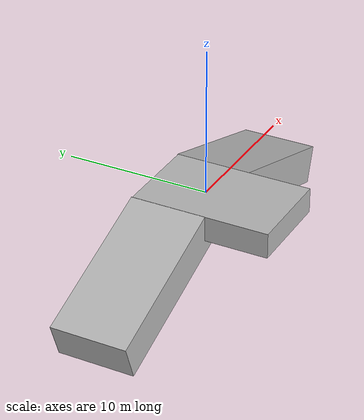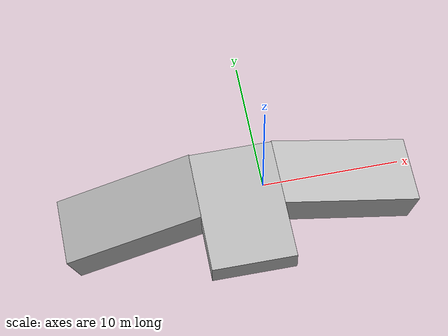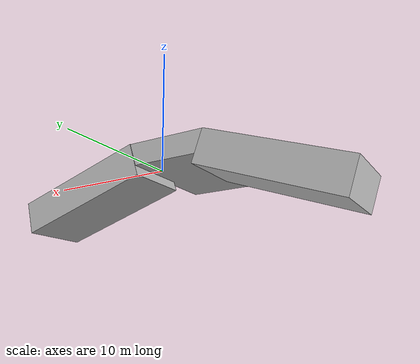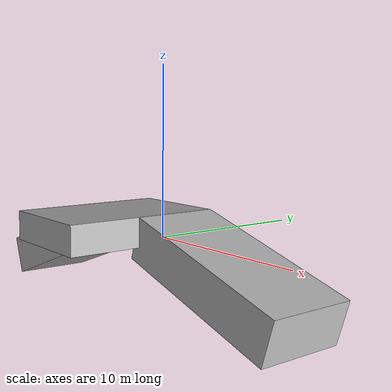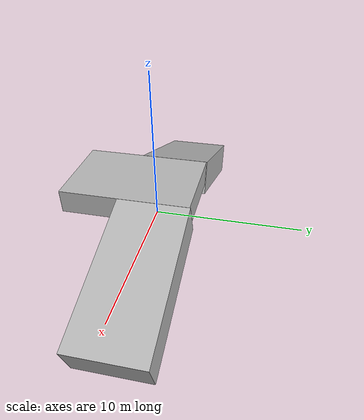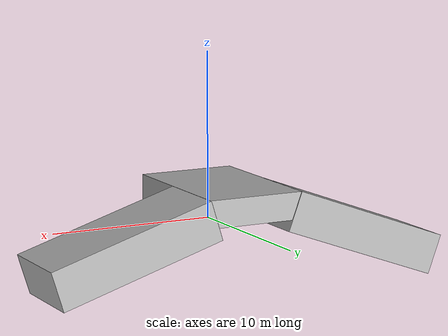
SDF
<?xml version='1.0'?>
<sdf version='1.7'>
  <model name='slope_ros2_papaer1'>
    <link name='slope_down'>
      <pose>5.80469 0.081427 -1.20923 0 0.299885 0</pose>
      <self_collide>0</self_collide>
      <kinematic>0</kinematic>
      <gravity>1</gravity>
      <enable_wind>0</enable_wind>
      <inertial>
        <inertia>
          <ixx>0</ixx>
          <ixy>0</ixy>
          <ixz>0</ixz>
          <iyy>0</iyy>
          <iyz>0</iyz>
          <izz>0</izz>
        </inertia>
        <mass>0</mass>
        <pose>0 0 0 0 -0 0</pose>
      </inertial>
      <visual name='visual'>
        <geometry>
          <box>
            <size>10.6012 5.12132 2.52711</size>
          </box>
        </geometry>
        <material>
          <shader type='pixel'/>
        </material>
        <pose>0 0 0 0 -0 0</pose>
        <transparency>0</transparency>
        <cast_shadows>1</cast_shadows>
      </visual>
      <collision name='collision'>
        <laser_retro>0</laser_retro>
        <max_contacts>10</max_contacts>
        <pose>0 0 0 0 -0 0</pose>
        <geometry>
          <box>
            <size>10.6012 5.12132 2.52711</size>
          </box>
        </geometry>
        <surface>
          <friction>
            <ode>
              <mu>1</mu>
              <mu2>1</mu2>
              <fdir1>0 0 0</fdir1>
              <slip1>0</slip1>
              <slip2>0</slip2>
            </ode>
            <torsional>
              <coefficient>1</coefficient>
              <patch_radius>0</patch_radius>
              <surface_radius>0</surface_radius>
              <use_patch_radius>1</use_patch_radius>
              <ode>
                <slip>0</slip>
              </ode>
            </torsional>
          </friction>
          <bounce>
            <restitution_coefficient>0</restitution_coefficient>
            <threshold>1e+06</threshold>
          </bounce>
          <contact>
            <collide_without_contact>0</collide_without_contact>
            <collide_without_contact_bitmask>1</collide_without_contact_bitmask>
            <collide_bitmask>1</collide_bitmask>
            <ode>
              <soft_cfm>0</soft_cfm>
              <soft_erp>0.2</soft_erp>
              <kp>1e+13</kp>
              <kd>1</kd>
              <max_vel>0.01</max_vel>
              <min_depth>0</min_depth>
            </ode>
            <bullet>
              <split_impulse>1</split_impulse>
              <split_impulse_penetration_threshold>-0.01</split_impulse_penetration_threshold>
              <soft_cfm>0</soft_cfm>
              <soft_erp>0.2</soft_erp>
              <kp>1e+13</kp>
              <kd>1</kd>
            </bullet>
          </contact>
        </surface>
      </collision>
    </link>
    <link name='slope_down_clone'>
      <pose>-9.48985 0.080381 -1.45866 0 -0.355634 0</pose>
      <self_collide>0</self_collide>
      <kinematic>0</kinematic>
      <gravity>1</gravity>
      <enable_wind>0</enable_wind>
      <inertial>
        <inertia>
          <ixx>0</ixx>
          <ixy>0</ixy>
          <ixz>0</ixz>
          <iyy>0</iyy>
          <iyz>0</iyz>
          <izz>0</izz>
        </inertia>
        <mass>0</mass>
        <pose>0 0 0 0 -0 0</pose>
      </inertial>
      <visual name='visual'>
        <geometry>
          <box>
            <size>10.6012 5.12132 2.52711</size>
          </box>
        </geometry>
        <material>
          <shader type='pixel'>
            <normal_map>__default__</normal_map>
          </shader>
        </material>
        <pose>0 0 0 0 -0 0</pose>
        <transparency>0</transparency>
        <cast_shadows>1</cast_shadows>
      </visual>
      <collision name='collision'>
        <laser_retro>0</laser_retro>
        <max_contacts>10</max_contacts>
        <pose>0 0 0 0 -0 0</pose>
        <geometry>
          <box>
            <size>10.6012 5.12132 2.52711</size>
          </box>
        </geometry>
        <surface>
          <friction>
            <ode>
              <mu>1</mu>
              <mu2>1</mu2>
              <fdir1>0 0 0</fdir1>
              <slip1>0</slip1>
              <slip2>0</slip2>
            </ode>
            <torsional>
              <coefficient>1</coefficient>
              <patch_radius>0</patch_radius>
              <surface_radius>0</surface_radius>
              <use_patch_radius>1</use_patch_radius>
              <ode>
                <slip>0</slip>
              </ode>
            </torsional>
          </friction>
          <bounce>
            <restitution_coefficient>0</restitution_coefficient>
            <threshold>1e+06</threshold>
          </bounce>
          <contact>
            <collide_without_contact>0</collide_without_contact>
            <collide_without_contact_bitmask>1</collide_without_contact_bitmask>
            <collide_bitmask>1</collide_bitmask>
            <ode>
              <soft_cfm>0</soft_cfm>
              <soft_erp>0.2</soft_erp>
              <kp>1e+13</kp>
              <kd>1</kd>
              <max_vel>0.01</max_vel>
              <min_depth>0</min_depth>
            </ode>
            <bullet>
              <split_impulse>1</split_impulse>
              <split_impulse_penetration_threshold>-0.01</split_impulse_penetration_threshold>
              <soft_cfm>0</soft_cfm>
              <soft_erp>0.2</soft_erp>
              <kp>1e+13</kp>
              <kd>1</kd>
            </bullet>
          </contact>
        </surface>
      </collision>
    </link>
    <link name='slope_zero'>
      <pose>-1.92902 -2.0749 0.7221 0 -0 0</pose>
      <self_collide>0</self_collide>
      <kinematic>0</kinematic>
      <gravity>1</gravity>
      <enable_wind>0</enable_wind>
      <inertial>
        <inertia>
          <ixx>0</ixx>
          <ixy>0</ixy>
          <ixz>0</ixz>
          <iyy>0</iyy>
          <iyz>0</iyz>
          <izz>0</izz>
        </inertia>
        <mass>0</mass>
        <pose>0 0 0 0 -0 0</pose>
      </inertial>
      <visual name='visual'>
        <geometry>
          <box>
            <size>6.10024 9.32027 1.69097</size>
          </box>
        </geometry>
        <material>
          <shader type='pixel'>
            <normal_map>__default__</normal_map>
          </shader>
        </material>
        <pose>0 0 0 0 -0 0</pose>
        <transparency>0</transparency>
        <cast_shadows>1</cast_shadows>
      </visual>
      <collision name='collision'>
        <laser_retro>0</laser_retro>
        <max_contacts>10</max_contacts>
        <pose>0 0 0 0 -0 0</pose>
        <geometry>
          <box>
            <size>6.10024 9.32027 1.69097</size>
          </box>
        </geometry>
        <surface>
          <friction>
            <ode>
              <mu>1</mu>
              <mu2>1</mu2>
              <fdir1>0 0 0</fdir1>
              <slip1>0</slip1>
              <slip2>0</slip2>
            </ode>
            <torsional>
              <coefficient>1</coefficient>
              <patch_radius>0</patch_radius>
              <surface_radius>0</surface_radius>
              <use_patch_radius>1</use_patch_radius>
              <ode>
                <slip>0</slip>
              </ode>
            </torsional>
          </friction>
          <bounce>
            <restitution_coefficient>0</restitution_coefficient>
            <threshold>1e+06</threshold>
          </bounce>
          <contact>
            <collide_without_contact>0</collide_without_contact>
            <collide_without_contact_bitmask>1</collide_without_contact_bitmask>
            <collide_bitmask>1</collide_bitmask>
            <ode>
              <soft_cfm>0</soft_cfm>
              <soft_erp>0.2</soft_erp>
              <kp>1e+13</kp>
              <kd>1</kd>
              <max_vel>0.01</max_vel>
              <min_depth>0</min_depth>
            </ode>
            <bullet>
              <split_impulse>1</split_impulse>
              <split_impulse_penetration_threshold>-0.01</split_impulse_penetration_threshold>
              <soft_cfm>0</soft_cfm>
              <soft_erp>0.2</soft_erp>
              <kp>1e+13</kp>
              <kd>1</kd>
            </bullet>
          </contact>
        </surface>
      </collision>
    </link>
    <static>1</static>
    <allow_auto_disable>1</allow_auto_disable>
  </model>
</sdf>
